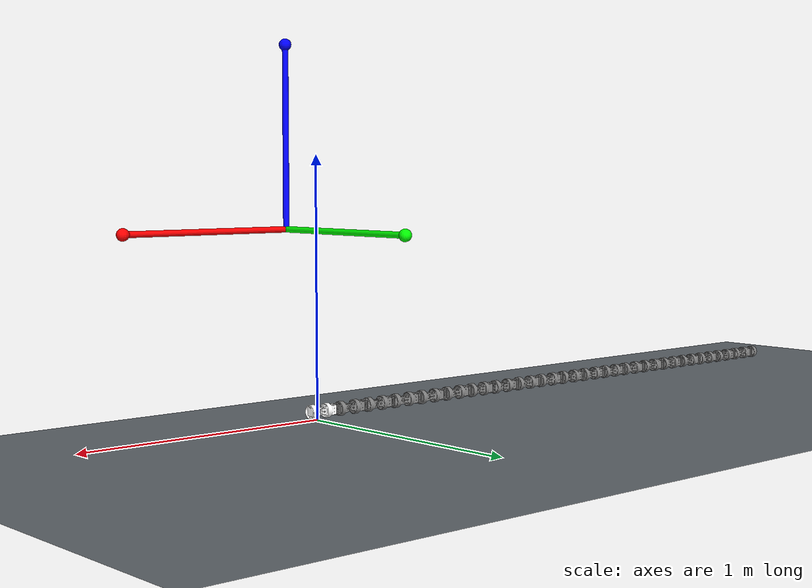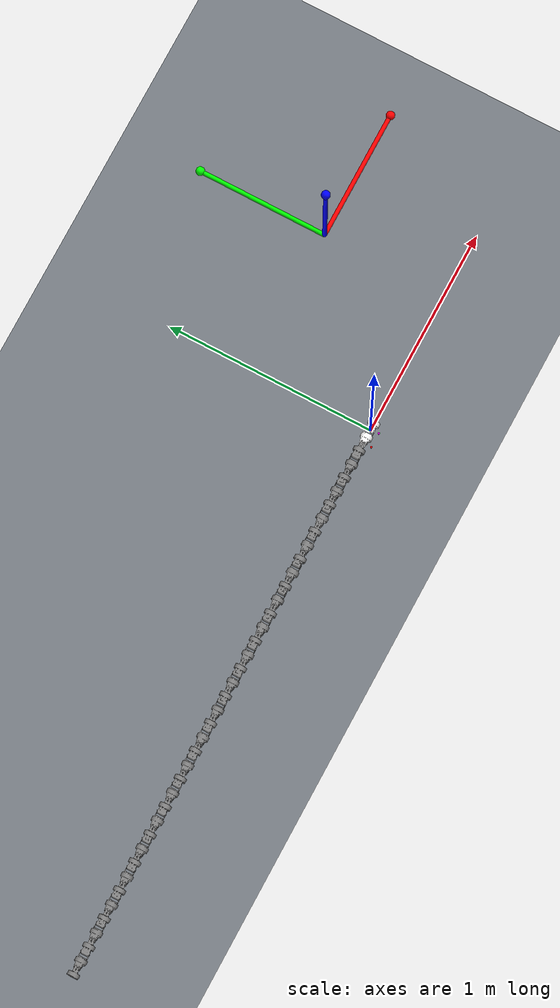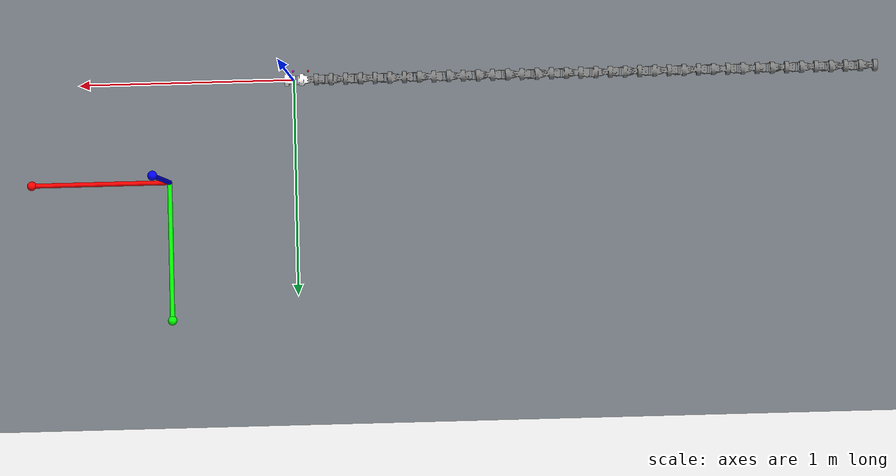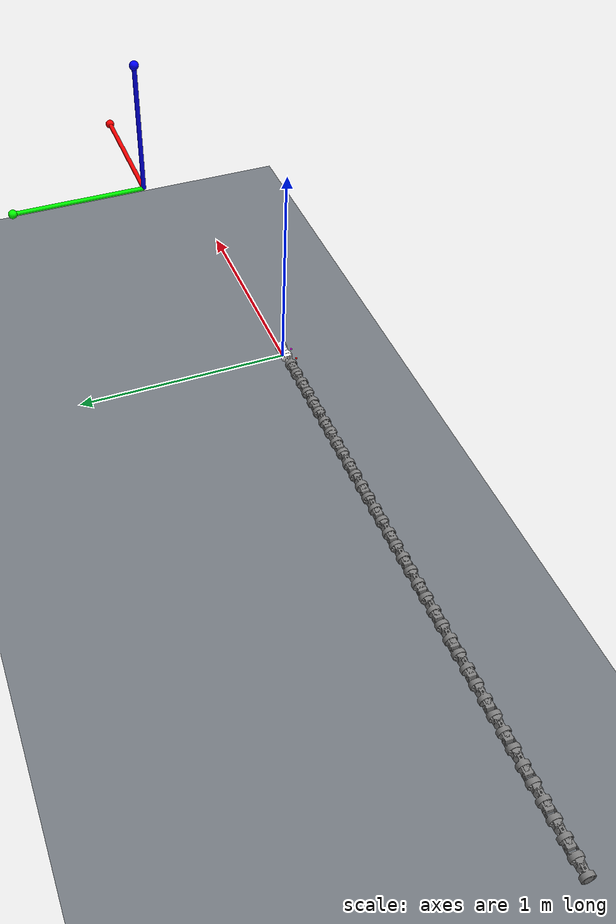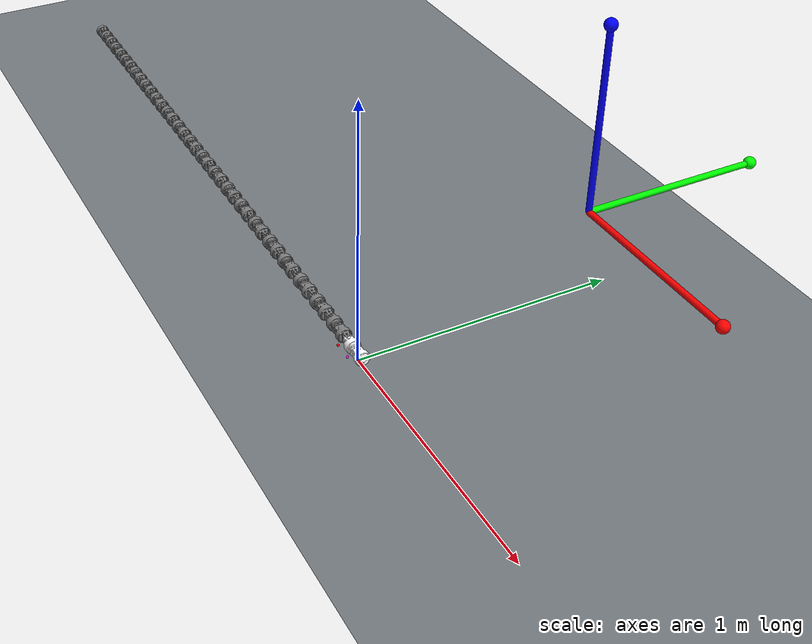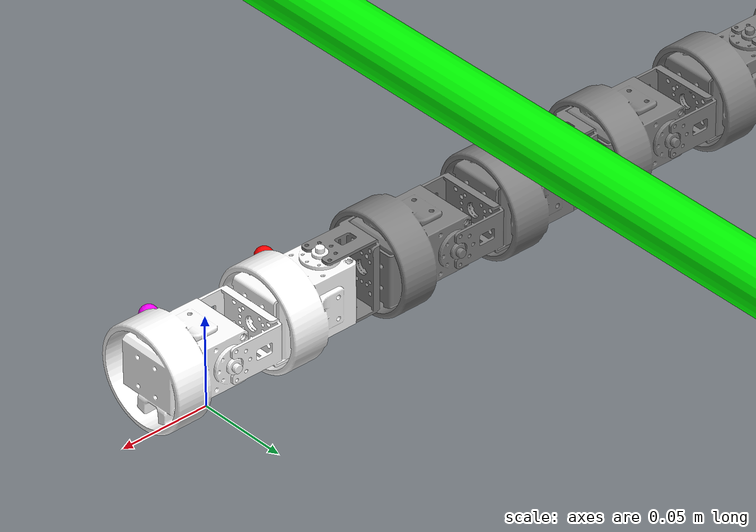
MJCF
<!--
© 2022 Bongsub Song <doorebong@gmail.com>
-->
<!-- All right reserved -->
<!-- Description : BRM snake robot Mujoco simulation xml -->
<!-- v20220830 : Circular frame version -->

<mujoco model="snake-dgist">

    <option timestep="0.001" iterations="100" tolerance="1e-8" solver="Newton" cone="elliptic"/>

    <asset>
        <texture name="texplane" type="2d" builtin="checker" rgb1=".8 .8 .8" rgb2=".1 0.15 0.2" width="512" height="512" mark="cross" markrgb=".8 .8 .8"/>

        <texture name="texgeom" type="cube" builtin="flat" mark="cross" width="127" height="1278"
            rgb1="0.8 0.6 0.4" rgb2="0.8 0.6 0.4" markrgb="1 1 1" random="0.01"/>

        <material name="matplane" reflectance="0.3" texture="texplane" texrepeat="2 2" texuniform="true"/>

        <material name="matgeom" texture="texgeom" texuniform="true" rgba="0.8 0.6 .4 1"/>

        <hfield name="terrain" ncol="201" nrow="201" size="30 30 5 .1"/>

        <mesh name="head_link" file="./asset/c_head.stl"/>
        <mesh name="v_link" file="./asset/c_link_V.stl"/>
        <mesh name="h_link" file="./asset/c_link_H.stl"/>
        <mesh name="tail_link" file="./asset/c_tail.stl"/>
    </asset>

    <worldbody>

        <geom name="floor" pos="0 0 0" size="0 0 .25" type="plane" material="matplane" condim="6" friction="3.5 0.5 0.3"/>
        <light directional="false" diffuse="1 1 1" specular="0 0 0" pos="0 0 15" dir="0 0 -1" castshadow="false"/>

        //显示X-Y-Z坐标轴
        <body name="x-y-z_axis" pos="0.5 0.5 0.75">
            <site name="x_axis" type="cylinder" size="0.01 0.3" pos="0.3 0 0" zaxis="1 0 0" rgba="1 0 0 1"/>
            <site name="y_axis" type="cylinder" size="0.01 0.3" pos="0 0.3 0" zaxis="0 1 0" rgba="0 1 0 1"/>
            <site name="z_axis" type="cylinder" size="0.01 0.3" pos="0 0 0.3" zaxis="0 0 1" rgba="0 0 1 1"/>
            <site name="x_axis_" type="sphere" size="0.02" pos="0.6 0 0" zaxis="1 0 0" rgba="1 0 0 1"/>
            <site name="y_axis_" type="sphere" size="0.02" pos="0 0.6 0" zaxis="0 1 0" rgba="0 1 0 1"/>
            <site name="z_axis_" type="sphere" size="0.02" pos="0 0 0.6" zaxis="0 0 1" rgba="0 0 1 1"/>
        </body>

        <body name="distance_measure" pos="0 -0.04 0.03">
            <site name="a" type="sphere" size="0.005" pos="0.0 0 0" rgba="1 0 1 1"/>
            <site name="b" type="sphere" size="0.005" pos="-0.07 0 0" rgba="1 0 0 1"/>
        </body>

        <body name="head" pos="0 0 0.033" euler="0 90 -90">
            <site name="s_head" pos="0 0 0.0295" euler="90 0 90" rgba="1 0 0 1"/>这里的每个site貌似都没有用啊，因此把它们都给注释掉
            <freejoint name="root"/>
            <geom type="mesh" mesh="head_link" mass="0.2" condim="6" friction="0.5 0.15 0.015" rgba="1 1 1 1"/>

        <body name="link1" pos="0  0 -0.0695" euler="0 0 -180">
            <site name="s_link1" pos="0 0 0.0295" euler="-90 0 -90" rgba="1 0 0 1"/>
            <joint name="joint1" type="hinge" pos="0 0 0.0685" axis="1 0 0" limited="true" range="-90 90" damping="0.6" armature="0.01" />
            <geom type="mesh" mesh="h_link" mass="0.2" condim="6" friction="0.5 0.15 0.015" rgba="1 1 1 1"/>

        <body name="link2" pos="0  0 -0.0675" euler="0 0 -180">
            <site name="s_link2" pos="0 0 0.0295" euler="90 0 90"/>
            <joint name="joint2" type="hinge" pos="0 0 0.0685" axis="0 -1 0" limited="true" range="-90 90" damping="0.6" armature="0.01" />
            <geom type="mesh" mesh="v_link" mass="0.2" condim="6" friction="0.5 0.15 0.015"/>

        <body name="link3" pos="0  0 -0.0695" euler="0 0 -180">
            <site name="s_link3" pos="0 0 0.0295" euler="-90 0 -90"/>
            <joint name="joint3" type="hinge" pos="0 0 0.0685" axis="1 0 0" limited="true" range="-90 90" damping="0.6" armature="0.01" />
            <geom type="mesh" mesh="h_link" mass="0.2" condim="6" friction="0.5 0.15 0.015"/>

        <body name="link4" pos="0  0 -0.0675" euler="0 0 -180">
            <site name="s_link4" pos="0 0 0.0295" euler="90 0 90"/>
            <joint name="joint4" type="hinge" pos="0 0 0.0685" axis="0 -1 0" limited="true" range="-90 90" damping="0.6" armature="0.01" />
            <geom type="mesh" mesh="v_link" mass="0.2" condim="6" friction="0.5 0.15 0.015"/>

        <body name="link5" pos="0  0 -0.0695" euler="0 0 -180">
            <site name="s_link5" pos="0 0 0.0295" euler="-90 0 -90"/>
            <joint name="joint5" type="hinge" pos="0 0 0.0685" axis="1 0 0" limited="true" range="-90 90" damping="0.6" armature="0.01" />
            <geom type="mesh" mesh="h_link" mass="0.2" condim="6" friction="0.5 0.15 0.015"/>

        <body name="link6" pos="0  0 -0.0675" euler="0 0 -180">
            <site name="s_link6" pos="0 0 0.0295" euler="90 0 90"/>
            <joint name="joint6" type="hinge" pos="0 0 0.0685" axis="0 -1 0" limited="true" range="-90 90" damping="0.6" armature="0.01" />
            <geom type="mesh" mesh="v_link" mass="0.2" condim="6" friction="0.5 0.15 0.015"/>

        <body name="link7" pos="0  0 -0.0695" euler="0 0 -180">
            <site name="s_link7" pos="0 0 0.0295" euler="-90 0 -90"/>
            <joint name="joint7" type="hinge" pos="0 0 0.0685" axis="1 0 0" limited="true" range="-90 90" damping="0.6" armature="0.01" />
            <geom type="mesh" mesh="h_link" mass="0.2" condim="6" friction="0.5 0.15 0.015"/>

        <body name="link8" pos="0  0 -0.0675" euler="0 0 -180">
            <site name="s_link8" pos="0 0 0.0295" euler="90 0 90"/>
            <joint name="joint8" type="hinge" pos="0 0 0.0685" axis="0 -1 0" limited="true" range="-90 90" damping="0.6" armature="0.01" />
            <geom type="mesh" mesh="v_link" mass="0.2" condim="6" friction="0.5 0.15 0.015"/>

        <body name="link9" pos="0  0 -0.0695" euler="0 0 -180">
            <site name="s_link9" pos="0 0 0.0295" euler="-90 0 -90"/>
            <joint name="joint9" type="hinge" pos="0 0 0.0685" axis="1 0 0" limited="true" range="-90 90" damping="0.6" armature="0.01" />
            <geom type="mesh" mesh="h_link" mass="0.2" condim="6" friction="0.5 0.15 0.015"/>

        <body name="link10" pos="0  0 -0.0675" euler="0 0 -180">
            <site name="s_link10" pos="0 0 0.0295" euler="90 0 90"/>
            <joint name="joint10" type="hinge" pos="0 0 0.0685" axis="0 -1 0" limited="true" range="-90 90" damping="0.6" armature="0.01" />
            <geom type="mesh" mesh="v_link" mass="0.2" condim="6" friction="0.5 0.15 0.015"/>

        <body name="link11" pos="0  0 -0.0695" euler="0 0 -180">
            <site name="s_link11" pos="0 0 0.0295" euler="-90 0 -90"/>
            <joint name="joint11" type="hinge" pos="0 0 0.0685" axis="1 0 0" limited="true" range="-90 90" damping="0.6" armature="0.01" />
            <geom type="mesh" mesh="h_link" mass="0.2" condim="6" friction="0.5 0.15 0.015"/>

        <body name="link12" pos="0  0 -0.0675" euler="0 0 -180">
            <site name="s_link12" pos="0 0 0.0295" euler="90 0 90"/>
            <joint name="joint12" type="hinge" pos="0 0 0.0685" axis="0 -1 0" limited="true" range="-90 90" damping="0.6" armature="0.01" />
            <geom type="mesh" mesh="v_link" mass="0.2" condim="6" friction="0.5 0.15 0.015"/>

        <body name="link13" pos="0  0 -0.0695" euler="0 0 -180">
            <site name="s_link13" pos="0 0 0.0295" euler="-90 0 -90"/>
            <joint name="joint13" type="hinge" pos="0 0 0.0685" axis="1 0 0" limited="true" range="-90 90" damping="0.6" armature="0.01" />
            <geom type="mesh" mesh="h_link" mass="0.2" condim="6" friction="0.5 0.15 0.015"/>

        <body name="link14" pos="0  0 -0.0675" euler="0 0 -180">
            <site name="s_link14" pos="0 0 0.0295" euler="90 0 90"/>
            <joint name="joint14" type="hinge" pos="0 0 0.0685" axis="0 -1 0" limited="true" range="-90 90" damping="0.6" armature="0.01" />
            <geom type="mesh" mesh="v_link" mass="0.2" condim="6" friction="0.5 0.15 0.015"/>

        <body name="link15" pos="0  0 -0.0695" euler="0 0 -180">
            <site name="s_link15" pos="0 0 0.0295" euler="-90 0 -90"/>
            <joint name="joint15" type="hinge" pos="0 0 0.0685" axis="1 0 0" limited="true" range="-90 90" damping="0.6" armature="0.01" />
            <geom type="mesh" mesh="h_link" mass="0.2" condim="6" friction="0.5 0.15 0.015"/>

        <body name="link16" pos="0  0 -0.0675" euler="0 0 -180">
            <site name="s_link16" pos="0 0 0.0295" euler="90 0 90"/>
            <joint name="joint16" type="hinge" pos="0 0 0.0685" axis="0 -1 0" limited="true" range="-90 90" damping="0.6" armature="0.01" />
            <geom type="mesh" mesh="v_link" mass="0.2" condim="6" friction="0.5 0.15 0.015"/>

        <body name="link17" pos="0  0 -0.0695" euler="0 0 -180">
            <site name="s_link17" pos="0 0 0.0295" euler="-90 0 -90"/>
            <joint name="joint17" type="hinge" pos="0 0 0.0685" axis="1 0 0" limited="true" range="-90 90" damping="0.6" armature="0.01" />
            <geom type="mesh" mesh="h_link" mass="0.2" condim="6" friction="0.5 0.15 0.015"/>

        <body name="link18" pos="0  0 -0.0675" euler="0 0 -180">
            <site name="s_link18" pos="0 0 0.0295" euler="90 0 90"/>
            <joint name="joint18" type="hinge" pos="0 0 0.0685" axis="0 -1 0" limited="true" range="-90 90" damping="0.6" armature="0.01" />
            <geom type="mesh" mesh="v_link" mass="0.2" condim="6" friction="0.5 0.15 0.015"/>

        <body name="link19" pos="0  0 -0.0695" euler="0 0 -180">
            <site name="s_link19" pos="0 0 0.0295" euler="-90 0 -90"/>
            <joint name="joint19" type="hinge" pos="0 0 0.0685" axis="1 0 0" limited="true" range="-90 90" damping="0.6" armature="0.01" />
            <geom type="mesh" mesh="h_link" mass="0.2" condim="6" friction="0.5 0.15 0.015"/>

        <body name="link20" pos="0  0 -0.0675" euler="0 0 -180">
            <site name="s_link20" pos="0 0 0.0295" euler="90 0 90"/>
            <joint name="joint20" type="hinge" pos="0 0 0.0685" axis="0 -1 0" limited="true" range="-90 90" damping="0.6" armature="0.01" />
            <geom type="mesh" mesh="v_link" mass="0.2" condim="6" friction="0.5 0.15 0.015"/>

        <body name="link21" pos="0  0 -0.0695" euler="0 0 -180">
            <site name="s_link21" pos="0 0 0.0295" euler="-90 0 -90"/>
            <joint name="joint21" type="hinge" pos="0 0 0.0685" axis="1 0 0" limited="true" range="-90 90" damping="0.6" armature="0.01" />
            <geom type="mesh" mesh="h_link" mass="0.2" condim="6" friction="0.5 0.15 0.015"/>

        <body name="link22" pos="0  0 -0.0675" euler="0 0 -180">
            <site name="s_link22" pos="0 0 0.0295" euler="90 0 90"/>
            <joint name="joint22" type="hinge" pos="0 0 0.0685" axis="0 -1 0" limited="true" range="-90 90" damping="0.6" armature="0.01" />
            <geom type="mesh" mesh="v_link" mass="0.2" condim="6" friction="0.5 0.15 0.015"/>

        <body name="link23" pos="0  0 -0.0695" euler="0 0 -180">
            <site name="s_link23" pos="0 0 0.0295" euler="-90 0 -90"/>
            <joint name="joint23" type="hinge" pos="0 0 0.0685" axis="1 0 0" limited="true" range="-90 90" damping="0.6" armature="0.01" />
            <geom type="mesh" mesh="h_link" mass="0.2" condim="6" friction="0.5 0.15 0.015"/>

        <body name="link24" pos="0  0 -0.0675" euler="0 0 -180">
            <site name="s_link24" pos="0 0 0.0295" euler="90 0 90"/>
            <joint name="joint24" type="hinge" pos="0 0 0.0685" axis="0 -1 0" limited="true" range="-90 90" damping="0.6" armature="0.01" />
            <geom type="mesh" mesh="v_link" mass="0.2" condim="6" friction="0.5 0.15 0.015"/>

        <body name="link25" pos="0  0 -0.0695" euler="0 0 -180">
            <site name="s_link25" pos="0 0 0.0295" euler="-90 0 -90"/>
            <joint name="joint25" type="hinge" pos="0 0 0.0685" axis="1 0 0" limited="true" range="-90 90" damping="0.6" armature="0.01" />
            <geom type="mesh" mesh="h_link" mass="0.2" condim="6" friction="0.5 0.15 0.015"/>

        <body name="link26" pos="0  0 -0.0675" euler="0 0 -180">
            <site name="s_link26" pos="0 0 0.0295" euler="90 0 90"/>
            <joint name="joint26" type="hinge" pos="0 0 0.0685" axis="0 -1 0" limited="true" range="-90 90" damping="0.6" armature="0.01" />
            <geom type="mesh" mesh="v_link" mass="0.2" condim="6" friction="0.5 0.15 0.015"/>

        <body name="link27" pos="0  0 -0.0695" euler="0 0 -180">
            <site name="s_link27" pos="0 0 0.0295" euler="-90 0 -90"/>
            <joint name="joint27" type="hinge" pos="0 0 0.0685" axis="1 0 0" limited="true" range="-90 90" damping="0.6" armature="0.01" />
            <geom type="mesh" mesh="h_link" mass="0.2" condim="6" friction="0.5 0.15 0.015"/>

        <body name="link28" pos="0  0 -0.0675" euler="0 0 -180">
            <site name="s_link28" pos="0 0 0.0295" euler="90 0 90"/>
            <joint name="joint28" type="hinge" pos="0 0 0.0685" axis="0 -1 0" limited="true" range="-90 90" damping="0.6" armature="0.01" />
            <geom type="mesh" mesh="v_link" mass="0.2" condim="6" friction="0.5 0.15 0.015"/>

        <body name="link29" pos="0  0 -0.0695" euler="0 0 -180">
            <site name="s_link29" pos="0 0 0.0295" euler="-90 0 -90"/>
            <joint name="joint29" type="hinge" pos="0 0 0.0685" axis="1 0 0" limited="true" range="-90 90" damping="0.6" armature="0.01" />
            <geom type="mesh" mesh="h_link" mass="0.2" condim="6" friction="0.5 0.15 0.015"/>

        <body name="link30" pos="0  0 -0.0675" euler="0 0 -180">
            <site name="s_link30" pos="0 0 0.0295" euler="90 0 90"/>
            <joint name="joint30" type="hinge" pos="0 0 0.0685" axis="0 -1 0" limited="true" range="-90 90" damping="0.6" armature="0.01" />
            <geom type="mesh" mesh="v_link" mass="0.2" condim="6" friction="0.5 0.15 0.015"/>

        <body name="link31" pos="0  0 -0.0695" euler="0 0 -180">
            <site name="s_link31" pos="0 0 0.0295" euler="-90 0 -90"/>
            <joint name="joint31" type="hinge" pos="0 0 0.0685" axis="1 0 0" limited="true" range="-90 90" damping="0.6" armature="0.01" />
            <geom type="mesh" mesh="h_link" mass="0.2" condim="6" friction="0.5 0.15 0.015"/>

        <body name="link32" pos="0  0 -0.0675" euler="0 0 -180">
            <site name="s_link32" pos="0 0 0.0295" euler="90 0 90"/>
            <joint name="joint32" type="hinge" pos="0 0 0.0685" axis="0 -1 0" limited="true" range="-90 90" damping="0.6" armature="0.01" />
            <geom type="mesh" mesh="v_link" mass="0.2" condim="6" friction="0.5 0.15 0.015"/>

        <body name="link33" pos="0  0 -0.0695" euler="0 0 -180">
            <site name="s_link33" pos="0 0 0.0295" euler="-90 0 -90"/>
            <joint name="joint33" type="hinge" pos="0 0 0.0685" axis="1 0 0" limited="true" range="-90 90" damping="0.6" armature="0.01" />
            <geom type="mesh" mesh="h_link" mass="0.2" condim="6" friction="0.5 0.15 0.015"/>

        <body name="link34" pos="0  0 -0.0675" euler="0 0 -180">
            <site name="s_link34" pos="0 0 0.0295" euler="90 0 90"/>
            <joint name="joint34" type="hinge" pos="0 0 0.0685" axis="0 -1 0" limited="true" range="-90 90" damping="0.6" armature="0.01" />
            <geom type="mesh" mesh="v_link" mass="0.2" condim="6" friction="0.5 0.15 0.015"/>

        <body name="link35" pos="0  0 -0.0695" euler="0 0 -180">
            <site name="s_link35" pos="0 0 0.0295" euler="-90 0 -90"/>
            <joint name="joint35" type="hinge" pos="0 0 0.0685" axis="1 0 0" limited="true" range="-90 90" damping="0.6" armature="0.01" />
            <geom type="mesh" mesh="h_link" mass="0.2" condim="6" friction="0.5 0.15 0.015"/>

        <body name="link36" pos="0  0 -0.0675" euler="0 0 -180">
            <site name="s_link36" pos="0 0 0.0295" euler="90 0 90"/>
            <joint name="joint36" type="hinge" pos="0 0 0.0685" axis="0 -1 0" limited="true" range="-90 90" damping="0.6" armature="0.01" />
            <geom type="mesh" mesh="v_link" mass="0.2" condim="6" friction="0.5 0.15 0.015"/>

        <body name="link37" pos="0  0 -0.0695" euler="0 0 -180">
            <site name="s_link37" pos="0 0 0.0295" euler="-90 0 -90"/>
            <joint name="joint37" type="hinge" pos="0 0 0.0685" axis="1 0 0" limited="true" range="-90 90" damping="0.6" armature="0.01" />
            <geom type="mesh" mesh="h_link" mass="0.2" condim="6" friction="0.5 0.15 0.015"/>

        <body name="link38" pos="0  0 -0.0675" euler="0 0 -180">
            <site name="s_link38" pos="0 0 0.0295" euler="90 0 90"/>
            <joint name="joint38" type="hinge" pos="0 0 0.0685" axis="0 -1 0" limited="true" range="-90 90" damping="0.6" armature="0.01" />
            <geom type="mesh" mesh="v_link" mass="0.2" condim="6" friction="0.5 0.15 0.015"/>

        <body name="link39" pos="0  0 -0.0695" euler="0 0 -180">
            <site name="s_link39" pos="0 0 0.0295" euler="-90 0 -90"/>
            <joint name="joint39" type="hinge" pos="0 0 0.0685" axis="1 0 0" limited="true" range="-90 90" damping="0.6" armature="0.01" />
            <geom type="mesh" mesh="h_link" mass="0.2" condim="6" friction="0.5 0.15 0.015"/>

        <body name="tail" pos="0  0 -0.0675" euler="0 0 -180">
            <site name="s_tail" pos="0 0 0.0295" euler="90 0 90"/>
            <joint name="joint40" type="hinge" pos="0 0 0.0685" axis="0 -1 0" limited="true" range="-90 90" damping="0.6" armature="0.01" />
            <geom type="mesh" mesh="tail_link" mass="0.2" condim="6" friction="0.5 0.15 0.015"/>

        </body>
        </body>
        </body>
        </body>
        </body>
        </body>
        </body>
        </body>
        </body>
        </body>
        </body>
        </body>
        </body>
        </body>
        </body>
        </body>
        </body>
        </body>
        </body>
        </body>
        </body>
        </body>
        </body>
        </body>
        </body>
        </body>
        </body>
        </body>
        </body>
        </body>
        </body>
        </body>
        </body>
        </body>
        </body>
        </body>
        </body>
        </body>
        </body>
        </body>
        </body>
    </worldbody>

<!--下面的forcerange之前是-3.0 3.0    -->
    <actuator>
        <position name="servo_1" ctrllimited="true" ctrlrange="-1.5708 1.5708" forcelimited="true" forcerange="-13.0 13.0" gear="1" joint="joint1" kp="16"/>
        <position name="servo_2" ctrllimited="true" ctrlrange="-1.5708 1.5708" forcelimited="true" forcerange="-13.0 13.0" gear="1" joint="joint2" kp="16"/>
        <position name="servo_3" ctrllimited="true" ctrlrange="-1.5708 1.5708" forcelimited="true" forcerange="-13.0 13.0" gear="1" joint="joint3" kp="16"/>
        <position name="servo_4" ctrllimited="true" ctrlrange="-1.5708 1.5708" forcelimited="true" forcerange="-13.0 13.0" gear="1" joint="joint4" kp="16"/>
        <position name="servo_5" ctrllimited="true" ctrlrange="-1.5708 1.5708" forcelimited="true" forcerange="-13.0 13.0" gear="1" joint="joint5" kp="16"/>
        <position name="servo_6" ctrllimited="true" ctrlrange="-1.5708 1.5708" forcelimited="true" forcerange="-13.0 13.0" gear="1" joint="joint6" kp="16"/>
        <position name="servo_7" ctrllimited="true" ctrlrange="-1.5708 1.5708" forcelimited="true" forcerange="-13.0 13.0" gear="1" joint="joint7" kp="16"/>
        <position name="servo_8" ctrllimited="true" ctrlrange="-1.5708 1.5708" forcelimited="true" forcerange="-13.0 13.0" gear="1" joint="joint8" kp="16"/>
        <position name="servo_9" ctrllimited="true" ctrlrange="-1.5708 1.5708" forcelimited="true" forcerange="-13.0 13.0" gear="1" joint="joint9" kp="16"/>
        <position name="servo_10" ctrllimited="true" ctrlrange="-1.5708 1.5708" forcelimited="true" forcerange="-13.0 13.0" gear="1" joint="joint10" kp="16"/>
        <position name="servo_11" ctrllimited="true" ctrlrange="-1.5708 1.5708" forcelimited="true" forcerange="-13.0 13.0" gear="1" joint="joint11" kp="16"/>
        <position name="servo_12" ctrllimited="true" ctrlrange="-1.5708 1.5708" forcelimited="true" forcerange="-13.0 13.0" gear="1" joint="joint12" kp="16"/>
        <position name="servo_13" ctrllimited="true" ctrlrange="-1.5708 1.5708" forcelimited="true" forcerange="-13.0 13.0" gear="1" joint="joint13" kp="16"/>
        <position name="servo_14" ctrllimited="true" ctrlrange="-1.5708 1.5708" forcelimited="true" forcerange="-13.0 13.0" gear="1" joint="joint14" kp="16"/>
        <position name="servo_15" ctrllimited="true" ctrlrange="-1.5708 1.5708" forcelimited="true" forcerange="-13.0 13.0" gear="1" joint="joint15" kp="16"/>
        <position name="servo_16" ctrllimited="true" ctrlrange="-1.5708 1.5708" forcelimited="true" forcerange="-13.0 13.0" gear="1" joint="joint16" kp="16"/>
        <position name="servo_17" ctrllimited="true" ctrlrange="-1.5708 1.5708" forcelimited="true" forcerange="-13.0 13.0" gear="1" joint="joint17" kp="16"/>
        <position name="servo_18" ctrllimited="true" ctrlrange="-1.5708 1.5708" forcelimited="true" forcerange="-13.0 13.0" gear="1" joint="joint18" kp="16"/>
        <position name="servo_19" ctrllimited="true" ctrlrange="-1.5708 1.5708" forcelimited="true" forcerange="-13.0 13.0" gear="1" joint="joint19" kp="16"/>
        <position name="servo_20" ctrllimited="true" ctrlrange="-1.5708 1.5708" forcelimited="true" forcerange="-13.0 13.0" gear="1" joint="joint20" kp="16"/>
        <position name="servo_21" ctrllimited="true" ctrlrange="-1.5708 1.5708" forcelimited="true" forcerange="-13.0 13.0" gear="1" joint="joint21" kp="16"/>
        <position name="servo_22" ctrllimited="true" ctrlrange="-1.5708 1.5708" forcelimited="true" forcerange="-13.0 13.0" gear="1" joint="joint22" kp="16"/>
        <position name="servo_23" ctrllimited="true" ctrlrange="-1.5708 1.5708" forcelimited="true" forcerange="-13.0 13.0" gear="1" joint="joint23" kp="16"/>
        <position name="servo_24" ctrllimited="true" ctrlrange="-1.5708 1.5708" forcelimited="true" forcerange="-13.0 13.0" gear="1" joint="joint24" kp="16"/>
        <position name="servo_25" ctrllimited="true" ctrlrange="-1.5708 1.5708" forcelimited="true" forcerange="-13.0 13.0" gear="1" joint="joint25" kp="16"/>
        <position name="servo_26" ctrllimited="true" ctrlrange="-1.5708 1.5708" forcelimited="true" forcerange="-13.0 13.0" gear="1" joint="joint26" kp="16"/>
        <position name="servo_27" ctrllimited="true" ctrlrange="-1.5708 1.5708" forcelimited="true" forcerange="-13.0 13.0" gear="1" joint="joint27" kp="16"/>
        <position name="servo_28" ctrllimited="true" ctrlrange="-1.5708 1.5708" forcelimited="true" forcerange="-13.0 13.0" gear="1" joint="joint28" kp="16"/>
        <position name="servo_29" ctrllimited="true" ctrlrange="-1.5708 1.5708" forcelimited="true" forcerange="-13.0 13.0" gear="1" joint="joint29" kp="16"/>
        <position name="servo_30" ctrllimited="true" ctrlrange="-1.5708 1.5708" forcelimited="true" forcerange="-13.0 13.0" gear="1" joint="joint30" kp="16"/>
        <position name="servo_31" ctrllimited="true" ctrlrange="-1.5708 1.5708" forcelimited="true" forcerange="-13.0 13.0" gear="1" joint="joint31" kp="16"/>
        <position name="servo_32" ctrllimited="true" ctrlrange="-1.5708 1.5708" forcelimited="true" forcerange="-13.0 13.0" gear="1" joint="joint32" kp="16"/>
        <position name="servo_33" ctrllimited="true" ctrlrange="-1.5708 1.5708" forcelimited="true" forcerange="-13.0 13.0" gear="1" joint="joint33" kp="16"/>
        <position name="servo_34" ctrllimited="true" ctrlrange="-1.5708 1.5708" forcelimited="true" forcerange="-13.0 13.0" gear="1" joint="joint34" kp="16"/>
        <position name="servo_35" ctrllimited="true" ctrlrange="-1.5708 1.5708" forcelimited="true" forcerange="-13.0 13.0" gear="1" joint="joint35" kp="16"/>
        <position name="servo_36" ctrllimited="true" ctrlrange="-1.5708 1.5708" forcelimited="true" forcerange="-13.0 13.0" gear="1" joint="joint36" kp="16"/>
        <position name="servo_37" ctrllimited="true" ctrlrange="-1.5708 1.5708" forcelimited="true" forcerange="-13.0 13.0" gear="1" joint="joint37" kp="16"/>
        <position name="servo_38" ctrllimited="true" ctrlrange="-1.5708 1.5708" forcelimited="true" forcerange="-13.0 13.0" gear="1" joint="joint38" kp="16"/>
        <position name="servo_39" ctrllimited="true" ctrlrange="-1.5708 1.5708" forcelimited="true" forcerange="-13.0 13.0" gear="1" joint="joint39" kp="16"/>
        <position name="servo_40" ctrllimited="true" ctrlrange="-1.5708 1.5708" forcelimited="true" forcerange="-13.0 13.0" gear="1" joint="joint40" kp="16"/>
    </actuator>

    <sensor>
        <!-- index 0 - 5 -->

        <!-- index 6 - 19 -->
        <jointpos name="pos_joint1" joint="joint1"/>
        <jointpos name="pos_joint2" joint="joint2"/>
        <jointpos name="pos_joint3" joint="joint3"/>
        <jointpos name="pos_joint4" joint="joint4"/>
        <jointpos name="pos_joint5" joint="joint5"/>
        <jointpos name="pos_joint6" joint="joint6"/>
        <jointpos name="pos_joint7" joint="joint7"/>
        <jointpos name="pos_joint8" joint="joint8"/>
        <jointpos name="pos_joint9" joint="joint9"/>
        <jointpos name="pos_joint10" joint="joint10"/>
        <jointpos name="pos_joint11" joint="joint11"/>
        <jointpos name="pos_joint12" joint="joint12"/>
        <jointpos name="pos_joint13" joint="joint13"/>
        <jointpos name="pos_joint14" joint="joint14"/>
        <jointpos name="pos_joint15" joint="joint15"/>
        <jointpos name="pos_joint16" joint="joint16"/>
        <jointpos name="pos_joint17" joint="joint17"/>
        <jointpos name="pos_joint18" joint="joint18"/>
        <jointpos name="pos_joint19" joint="joint19"/>
        <jointpos name="pos_joint20" joint="joint20"/>
        <jointpos name="pos_joint21" joint="joint21"/>
        <jointpos name="pos_joint22" joint="joint22"/>
        <jointpos name="pos_joint23" joint="joint23"/>
        <jointpos name="pos_joint24" joint="joint24"/>
        <jointpos name="pos_joint25" joint="joint25"/>
        <jointpos name="pos_joint26" joint="joint26"/>
        <jointpos name="pos_joint27" joint="joint27"/>
        <jointpos name="pos_joint28" joint="joint28"/>
        <jointpos name="pos_joint29" joint="joint29"/>
        <jointpos name="pos_joint30" joint="joint30"/>
        <jointpos name="pos_joint31" joint="joint31"/>
        <jointpos name="pos_joint32" joint="joint32"/>
        <jointpos name="pos_joint33" joint="joint33"/>
        <jointpos name="pos_joint34" joint="joint34"/>
        <jointpos name="pos_joint35" joint="joint35"/>
        <jointpos name="pos_joint36" joint="joint36"/>
        <jointpos name="pos_joint37" joint="joint37"/>
        <jointpos name="pos_joint38" joint="joint38"/>
        <jointpos name="pos_joint39" joint="joint39"/>
        <jointpos name="pos_joint40" joint="joint40"/>

        <!-- index 20 - 33 -->
        <actuatorvel name="vel_joint1" actuator="servo_1"/>
        <actuatorvel name="vel_joint2" actuator="servo_2"/>
        <actuatorvel name="vel_joint3" actuator="servo_3"/>
        <actuatorvel name="vel_joint4" actuator="servo_4"/>
        <actuatorvel name="vel_joint5" actuator="servo_5"/>
        <actuatorvel name="vel_joint6" actuator="servo_6"/>
        <actuatorvel name="vel_joint7" actuator="servo_7"/>
        <actuatorvel name="vel_joint8" actuator="servo_8"/>
        <actuatorvel name="vel_joint9" actuator="servo_9"/>
        <actuatorvel name="vel_joint10" actuator="servo_10"/>
        <actuatorvel name="vel_joint11" actuator="servo_11"/>
        <actuatorvel name="vel_joint12" actuator="servo_12"/>
        <actuatorvel name="vel_joint13" actuator="servo_13"/>
        <actuatorvel name="vel_joint14" actuator="servo_14"/>
        <actuatorvel name="vel_joint15" actuator="servo_15"/>
        <actuatorvel name="vel_joint16" actuator="servo_16"/>
        <actuatorvel name="vel_joint17" actuator="servo_17"/>
        <actuatorvel name="vel_joint18" actuator="servo_18"/>
        <actuatorvel name="vel_joint19" actuator="servo_19"/>
        <actuatorvel name="vel_joint20" actuator="servo_20"/>
        <actuatorvel name="vel_joint21" actuator="servo_21"/>
        <actuatorvel name="vel_joint22" actuator="servo_22"/>
        <actuatorvel name="vel_joint23" actuator="servo_23"/>
        <actuatorvel name="vel_joint24" actuator="servo_24"/>
        <actuatorvel name="vel_joint25" actuator="servo_25"/>
        <actuatorvel name="vel_joint26" actuator="servo_26"/>
        <actuatorvel name="vel_joint27" actuator="servo_27"/>
        <actuatorvel name="vel_joint28" actuator="servo_28"/>
        <actuatorvel name="vel_joint29" actuator="servo_29"/>
        <actuatorvel name="vel_joint30" actuator="servo_30"/>
        <actuatorvel name="vel_joint31" actuator="servo_31"/>
        <actuatorvel name="vel_joint32" actuator="servo_32"/>
        <actuatorvel name="vel_joint33" actuator="servo_33"/>
        <actuatorvel name="vel_joint34" actuator="servo_34"/>
        <actuatorvel name="vel_joint35" actuator="servo_35"/>
        <actuatorvel name="vel_joint36" actuator="servo_36"/>
        <actuatorvel name="vel_joint37" actuator="servo_37"/>
        <actuatorvel name="vel_joint38" actuator="servo_38"/>
        <actuatorvel name="vel_joint39" actuator="servo_39"/>
        <actuatorvel name="vel_joint40" actuator="servo_40"/>

        <!-- index 34 - 47 -->
        <actuatorfrc name="torque_joint1" actuator="servo_1"/>
        <actuatorfrc name="torque_joint2" actuator="servo_2"/>
        <actuatorfrc name="torque_joint3" actuator="servo_3"/>
        <actuatorfrc name="torque_joint4" actuator="servo_4"/>
        <actuatorfrc name="torque_joint5" actuator="servo_5"/>
        <actuatorfrc name="torque_joint6" actuator="servo_6"/>
        <actuatorfrc name="torque_joint7" actuator="servo_7"/>
        <actuatorfrc name="torque_joint8" actuator="servo_8"/>
        <actuatorfrc name="torque_joint9" actuator="servo_9"/>
        <actuatorfrc name="torque_joint10" actuator="servo_10"/>
        <actuatorfrc name="torque_joint11" actuator="servo_11"/>
        <actuatorfrc name="torque_joint12" actuator="servo_12"/>
        <actuatorfrc name="torque_joint13" actuator="servo_13"/>
        <actuatorfrc name="torque_joint14" actuator="servo_14"/>
        <actuatorfrc name="torque_joint15" actuator="servo_15"/>
        <actuatorfrc name="torque_joint16" actuator="servo_16"/>
        <actuatorfrc name="torque_joint17" actuator="servo_17"/>
        <actuatorfrc name="torque_joint18" actuator="servo_18"/>
        <actuatorfrc name="torque_joint19" actuator="servo_19"/>
        <actuatorfrc name="torque_joint20" actuator="servo_20"/>
        <actuatorfrc name="torque_joint21" actuator="servo_21"/>
        <actuatorfrc name="torque_joint22" actuator="servo_22"/>
        <actuatorfrc name="torque_joint23" actuator="servo_23"/>
        <actuatorfrc name="torque_joint24" actuator="servo_24"/>
        <actuatorfrc name="torque_joint25" actuator="servo_25"/>
        <actuatorfrc name="torque_joint26" actuator="servo_26"/>
        <actuatorfrc name="torque_joint27" actuator="servo_27"/>
        <actuatorfrc name="torque_joint28" actuator="servo_28"/>
        <actuatorfrc name="torque_joint29" actuator="servo_29"/>
        <actuatorfrc name="torque_joint30" actuator="servo_30"/>
        <actuatorfrc name="torque_joint31" actuator="servo_31"/>
        <actuatorfrc name="torque_joint32" actuator="servo_32"/>
        <actuatorfrc name="torque_joint33" actuator="servo_33"/>
        <actuatorfrc name="torque_joint34" actuator="servo_34"/>
        <actuatorfrc name="torque_joint35" actuator="servo_35"/>
        <actuatorfrc name="torque_joint36" actuator="servo_36"/>
        <actuatorfrc name="torque_joint37" actuator="servo_37"/>
        <actuatorfrc name="torque_joint38" actuator="servo_38"/>
        <actuatorfrc name="torque_joint39" actuator="servo_39"/>
        <actuatorfrc name="torque_joint40" actuator="servo_40"/>

        <!-- index 48 - 51 -->
        <framequat name="head_quat" objtype="site" objname="s_head"/>

        <!-- index 52 - 107 -->
        <framequat name="link1_quat" objtype="site" objname="s_link1"/>
        <framequat name="link2_quat" objtype="site" objname="s_link2"/>
        <framequat name="link3_quat" objtype="site" objname="s_link3"/>
        <framequat name="link4_quat" objtype="site" objname="s_link4"/>
        <framequat name="link5_quat" objtype="site" objname="s_link5"/>
        <framequat name="link6_quat" objtype="site" objname="s_link6"/>
        <framequat name="link7_quat" objtype="site" objname="s_link7"/>
        <framequat name="link8_quat" objtype="site" objname="s_link8"/>
        <framequat name="link9_quat" objtype="site" objname="s_link9"/>
        <framequat name="link10_quat" objtype="site" objname="s_link10"/>
        <framequat name="link11_quat" objtype="site" objname="s_link11"/>
        <framequat name="link12_quat" objtype="site" objname="s_link12"/>
        <framequat name="link13_quat" objtype="site" objname="s_link13"/>
        <framequat name="link14_quat" objtype="site" objname="s_link14"/>
        <framequat name="link15_quat" objtype="site" objname="s_link15"/>
        <framequat name="link16_quat" objtype="site" objname="s_link16"/>
        <framequat name="link17_quat" objtype="site" objname="s_link17"/>
        <framequat name="link18_quat" objtype="site" objname="s_link18"/>
        <framequat name="link19_quat" objtype="site" objname="s_link19"/>
        <framequat name="link20_quat" objtype="site" objname="s_link20"/>
        <framequat name="link21_quat" objtype="site" objname="s_link21"/>
        <framequat name="link22_quat" objtype="site" objname="s_link22"/>
        <framequat name="link23_quat" objtype="site" objname="s_link23"/>
        <framequat name="link24_quat" objtype="site" objname="s_link24"/>
        <framequat name="link25_quat" objtype="site" objname="s_link25"/>
        <framequat name="link26_quat" objtype="site" objname="s_link26"/>
        <framequat name="link27_quat" objtype="site" objname="s_link27"/>
        <framequat name="link28_quat" objtype="site" objname="s_link28"/>
        <framequat name="link29_quat" objtype="site" objname="s_link29"/>
        <framequat name="link30_quat" objtype="site" objname="s_link30"/>
        <framequat name="link31_quat" objtype="site" objname="s_link31"/>
        <framequat name="link32_quat" objtype="site" objname="s_link32"/>
        <framequat name="link33_quat" objtype="site" objname="s_link33"/>
        <framequat name="link34_quat" objtype="site" objname="s_link34"/>
        <framequat name="link35_quat" objtype="site" objname="s_link35"/>
        <framequat name="link36_quat" objtype="site" objname="s_link36"/>
        <framequat name="link37_quat" objtype="site" objname="s_link37"/>
        <framequat name="link38_quat" objtype="site" objname="s_link38"/>
        <framequat name="link39_quat" objtype="site" objname="s_link39"/>
        <framequat name="tail_quat" objtype="site" objname="s_tail"/>

    </sensor>
</mujoco>
